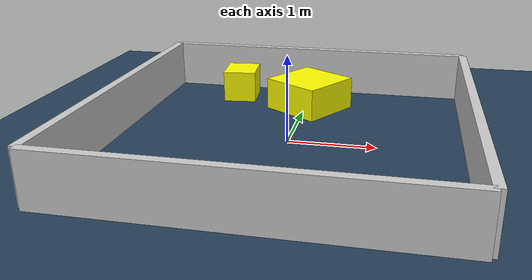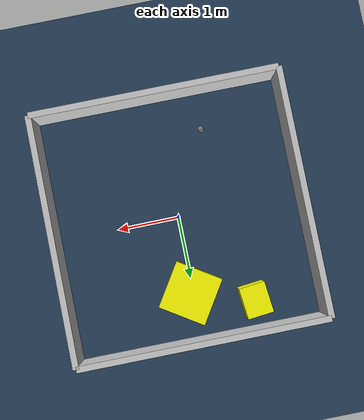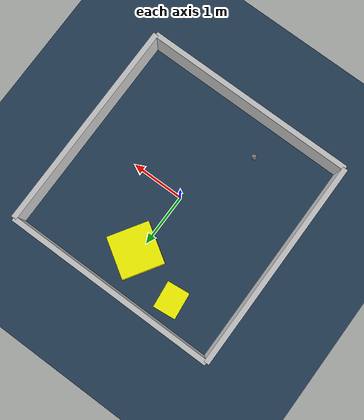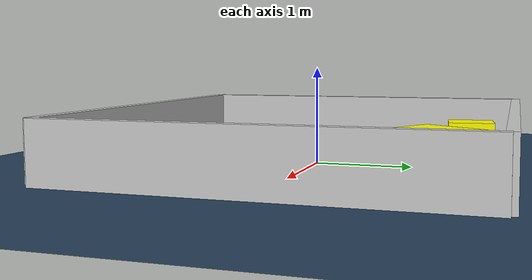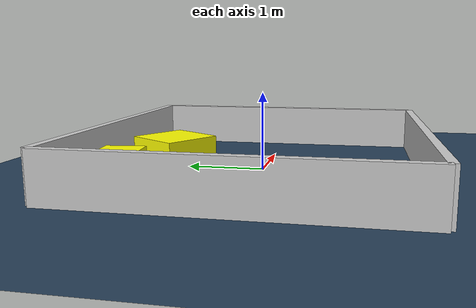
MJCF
<?xml version="1.0" ?>
<mujoco model="generated_environment">
  <option timestep="0.01" integrator="RK4" cone="elliptic"/>
  <default>
    <geom density="1"/>
  </default>
  <asset>
    <texture builtin="gradient" height="3072" rgb1="0.3 0.5 0.7" rgb2="0 0 0" type="skybox" width="512"/>
    <texture builtin="checker" height="300" mark="edge" markrgb="0.8 0.8 0.8" name="groundplane" rgb1="0.2 0.3 0.4" rgb2="0.1 0.2 0.3" type="2d" width="300"/>
    <material name="groundplane" reflectance="0.2" texrepeat="5 5" texture="groundplane" texuniform="true"/>
    <material name="robot" rgba="0.0 1.0 0.0 1"/>
  </asset>
  <worldbody>
    <light dir="0 0 -1" directional="true" pos="0 0 1.5"/>
    <geom condim="4" friction="1.0 0.005 0.001" material="groundplane" name="floor" size="0 0 0.05" type="plane"/>
    <body name="walls">
      <geom name="wall_1" condim="4" pos="-2.0 0.0 0.3" rgba="0.800000011920929 0.800000011920929 0.800000011920929 1.0" size="0.05 2.0 0.3" type="box"/>
      <geom name="wall_2" condim="4" pos="2.0 0.0 0.3" rgba="0.800000011920929 0.800000011920929 0.800000011920929 1.0" size="0.05 2.0 0.3" type="box"/>
      <geom name="wall_3" condim="4" pos="0.0 -2.0 0.3" rgba="0.800000011920929 0.800000011920929 0.800000011920929 1.0" size="2.0 0.05 0.3" type="box"/>
      <geom name="wall_4" condim="4" pos="0.0 2.0 0.3" rgba="0.800000011920929 0.800000011920929 0.800000011920929 1.0" size="2.0 0.05 0.3" type="box"/>
    </body>
    <body name="robot">
      <joint name="joint_x" type="slide" pos="0 0 0" axis="1 0 0"/>
      <joint name="joint_y" type="slide" pos="0 0 0" axis="0 1 0"/>
      <geom name="robot" type="sphere" pos="-0.6329246658250693 -1.3308584412791544 0.2" size="0.05" mass="5." friction="1.0 0.005 0.0001" condim="4"/>
      <site name="sensor_ball"/>
    </body>
    <body name="obstacle_1_movable">
      <geom name="obstacle_1_movable" condim="4" pos="0.05103115359360122 1.2138611115786615 0.2" euler="0 0 237.49501422424402" friction="1.0 0.005 0.001" rgba="1 1 0 1" size="0.38758271829208923 0.387496975582283 0.2" type="box" mass="0.1"/>
      <joint type="free"/>
    </body>
    <body name="obstacle_2_movable">
      <geom name="obstacle_2_movable" condim="4" pos="-0.9390536814570899 1.5256225476821141 0.2" euler="0 0 185.9673131753472" friction="1.0 0.005 0.001" rgba="1 1 0 1" size="0.2102417780116432 0.2488875724375403 0.2" type="box" mass="0.1"/>
      <joint type="free"/>
    </body>
  </worldbody>
  <actuator>
    <motor name="actuator_x" joint="joint_x" gear="1" ctrlrange="-1 1"/>
    <motor name="actuator_y" joint="joint_y" gear="1" ctrlrange="-1 1"/>
  </actuator>
</mujoco>
